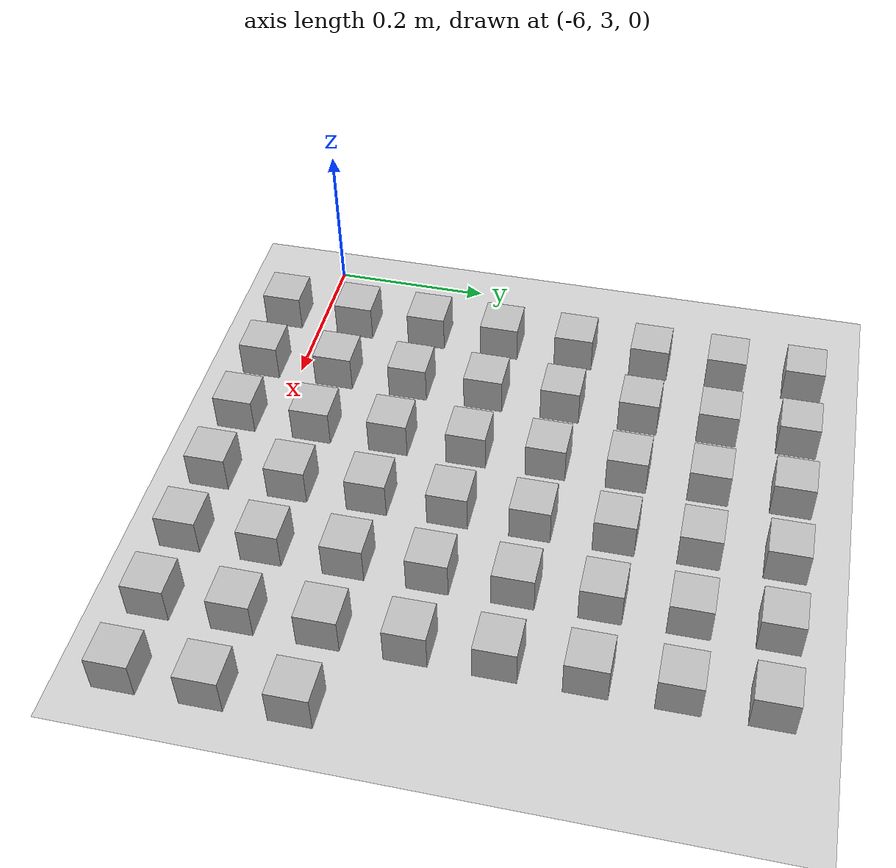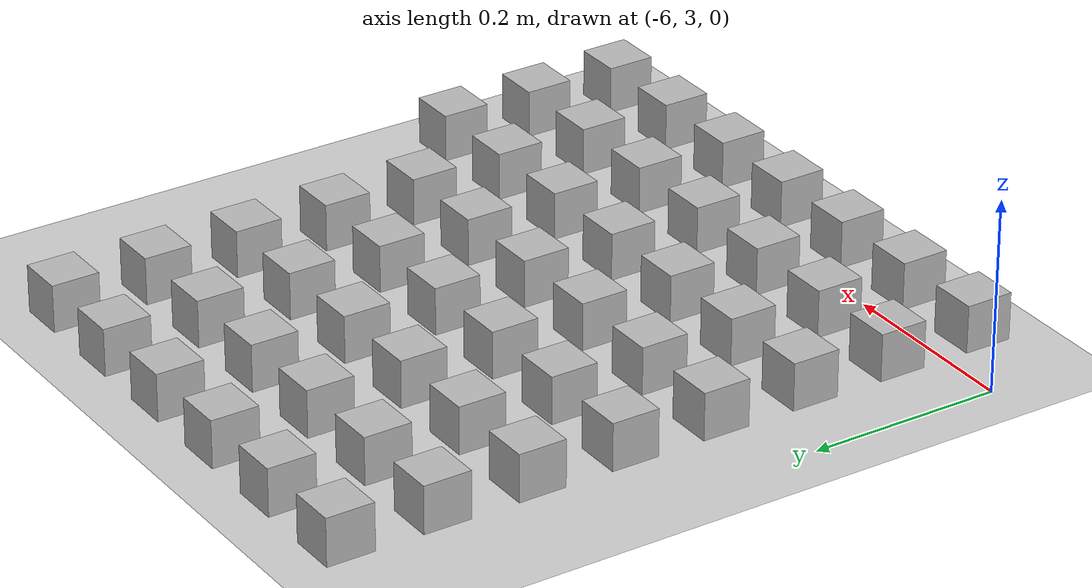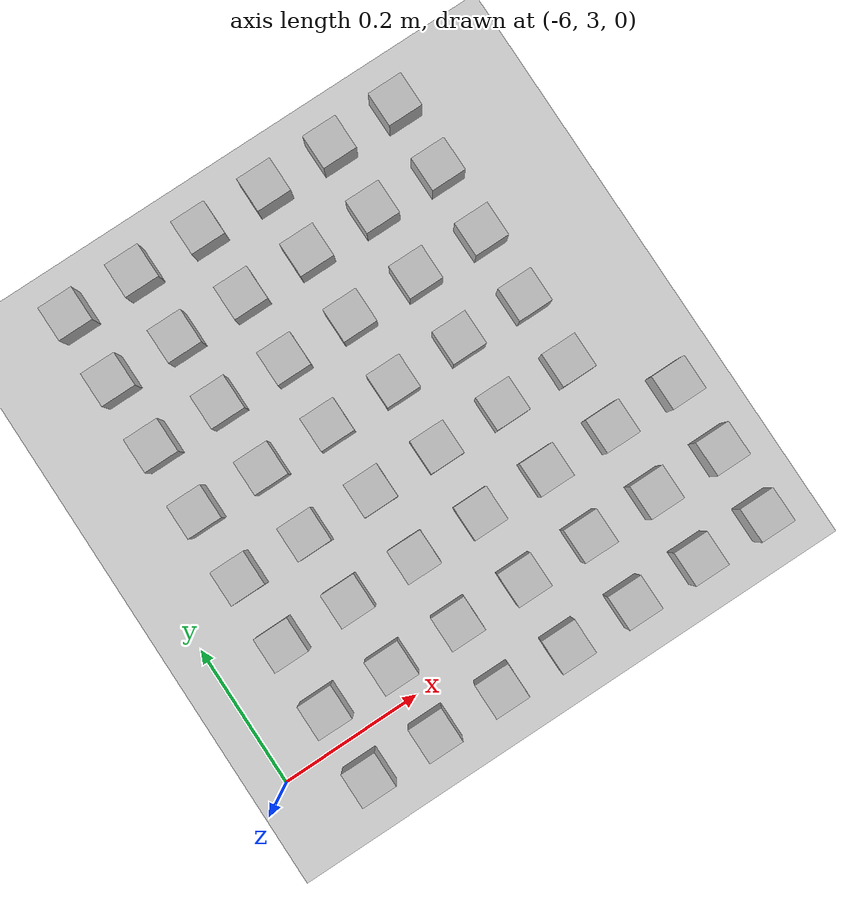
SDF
<sdf version="1.4">
 <world name="default">
  <model name="ground_plane">
   <static>1</static>
   <link name="link">
    <collision name="collision">
     <geometry><plane><normal>0 0 1</normal><size>100 100</size></plane></geometry>
     <surface><friction><ode><mu>100</mu><mu2>50</mu2></ode></friction></surface>
    </collision>
    <visual name="visual">
     <cast_shadows>0</cast_shadows>
     <geometry><plane><normal>0 0 1</normal><size>100 100</size></plane></geometry>
     <material>
      <script><uri>file://media/materials/scripts/gazebo.material</uri><name>Gazebo/Grey</name></script>
     </material>
    </visual>
    <velocity_decay><linear>0</linear><angular>0</angular></velocity_decay>
   </link>
  </model>
  <model name="at128">
   <static>0</static>
   <link name="link">
    <inertial>
     <mass>0.01</mass>
     <inertia><ixx>4e-05</ixx><ixy>0</ixy><ixz>0</ixz><iyy>4e-05</iyy><iyz>0</iyz><izz>4e-05</izz></inertia>
    </inertial>
    <visual name="visual">
     <transparency>0.1</transparency>
     <geometry><box><size>0.05 0.05 0.05</size></box></geometry>
     <material>
      <script>
       <uri>model://at0/materials/scripts</uri>
       <uri>model://at0/materials/textures</uri>
       <name>at0/Diffuse</name>
      </script>
     </material>
    </visual>
    <collision name="collision">
     <geometry><box><size>0.05 0.05 0.05</size></box></geometry>
     <surface><friction><ode><mu>0.8</mu><mu2>0.7</mu2></ode></friction></surface>
    </collision>
    <velocity_decay><linear>0</linear><angular>0</angular></velocity_decay>
   </link>
   <pose>-5.90443 2.95036 0.024997 2.9e-05 2.9e-05 2e-06</pose>
  </model>
  <model name="at129">
   <static>0</static>
   <link name="link">
    <inertial>
     <mass>0.01</mass>
     <inertia><ixx>4e-05</ixx><ixy>0</ixy><ixz>0</ixz><iyy>4e-05</iyy><iyz>0</iyz><izz>4e-05</izz></inertia>
    </inertial>
    <visual name="visual">
     <transparency>0.1</transparency>
     <geometry><box><size>0.05 0.05 0.05</size></box></geometry>
     <material>
      <script>
       <uri>model://at0/materials/scripts</uri>
       <uri>model://at0/materials/textures</uri>
       <name>at0/Diffuse</name>
      </script>
     </material>
    </visual>
    <collision name="collision">
     <geometry><box><size>0.05 0.05 0.05</size></box></geometry>
     <surface><friction><ode><mu>0.8</mu><mu2>0.7</mu2></ode></friction></surface>
    </collision>
    <velocity_decay><linear>0</linear><angular>0</angular></velocity_decay>
   </link>
   <pose>-5.80443 2.95036 0.024997 2.9e-05 2.9e-05 2e-06</pose>
  </model>
  <model name="at130">
   <static>0</static>
   <link name="link">
    <inertial>
     <mass>0.01</mass>
     <inertia><ixx>4e-05</ixx><ixy>0</ixy><ixz>0</ixz><iyy>4e-05</iyy><iyz>0</iyz><izz>4e-05</izz></inertia>
    </inertial>
    <visual name="visual">
     <transparency>0.1</transparency>
     <geometry><box><size>0.05 0.05 0.05</size></box></geometry>
     <material>
      <script>
       <uri>model://at0/materials/scripts</uri>
       <uri>model://at0/materials/textures</uri>
       <name>at0/Diffuse</name>
      </script>
     </material>
    </visual>
    <collision name="collision">
     <geometry><box><size>0.05 0.05 0.05</size></box></geometry>
     <surface><friction><ode><mu>0.8</mu><mu2>0.7</mu2></ode></friction></surface>
    </collision>
    <velocity_decay><linear>0</linear><angular>0</angular></velocity_decay>
   </link>
   <pose>-5.70443 2.95036 0.024997 2.9e-05 2.9e-05 2e-06</pose>
  </model>
  <model name="at131">
   <static>0</static>
   <link name="link">
    <inertial>
     <mass>0.01</mass>
     <inertia><ixx>4e-05</ixx><ixy>0</ixy><ixz>0</ixz><iyy>4e-05</iyy><iyz>0</iyz><izz>4e-05</izz></inertia>
    </inertial>
    <visual name="visual">
     <transparency>0.1</transparency>
     <geometry><box><size>0.05 0.05 0.05</size></box></geometry>
     <material>
      <script>
       <uri>model://at0/materials/scripts</uri>
       <uri>model://at0/materials/textures</uri>
       <name>at0/Diffuse</name>
      </script>
     </material>
    </visual>
    <collision name="collision">
     <geometry><box><size>0.05 0.05 0.05</size></box></geometry>
     <surface><friction><ode><mu>0.8</mu><mu2>0.7</mu2></ode></friction></surface>
    </collision>
    <velocity_decay><linear>0</linear><angular>0</angular></velocity_decay>
   </link>
   <pose>-5.60443 2.95036 0.024997 2.9e-05 2.9e-05 2e-06</pose>
  </model>
  <model name="at132">
   <static>0</static>
   <link name="link">
    <inertial>
     <mass>0.01</mass>
     <inertia><ixx>4e-05</ixx><ixy>0</ixy><ixz>0</ixz><iyy>4e-05</iyy><iyz>0</iyz><izz>4e-05</izz></inertia>
    </inertial>
    <visual name="visual">
     <transparency>0.1</transparency>
     <geometry><box><size>0.05 0.05 0.05</size></box></geometry>
     <material>
      <script>
       <uri>model://at0/materials/scripts</uri>
       <uri>model://at0/materials/textures</uri>
       <name>at0/Diffuse</name>
      </script>
     </material>
    </visual>
    <collision name="collision">
     <geometry><box><size>0.05 0.05 0.05</size></box></geometry>
     <surface><friction><ode><mu>0.8</mu><mu2>0.7</mu2></ode></friction></surface>
    </collision>
    <velocity_decay><linear>0</linear><angular>0</angular></velocity_decay>
   </link>
   <pose>-5.50443 2.95036 0.024997 2.9e-05 2.9e-05 2e-06</pose>
  </model>
  <model name="at133">
   <static>0</static>
   <link name="link">
    <inertial>
     <mass>0.01</mass>
     <inertia><ixx>4e-05</ixx><ixy>0</ixy><ixz>0</ixz><iyy>4e-05</iyy><iyz>0</iyz><izz>4e-05</izz></inertia>
    </inertial>
    <visual name="visual">
     <transparency>0.1</transparency>
     <geometry><box><size>0.05 0.05 0.05</size></box></geometry>
     <material>
      <script>
       <uri>model://at0/materials/scripts</uri>
       <uri>model://at0/materials/textures</uri>
       <name>at0/Diffuse</name>
      </script>
     </material>
    </visual>
    <collision name="collision">
     <geometry><box><size>0.05 0.05 0.05</size></box></geometry>
     <surface><friction><ode><mu>0.8</mu><mu2>0.7</mu2></ode></friction></surface>
    </collision>
    <velocity_decay><linear>0</linear><angular>0</angular></velocity_decay>
   </link>
   <pose>-5.40443 2.95036 0.024993 -2.9e-05 -2.9e-05 2e-06</pose>
  </model>
  <model name="at134">
   <static>0</static>
   <link name="link">
    <inertial>
     <mass>0.01</mass>
     <inertia><ixx>4e-05</ixx><ixy>0</ixy><ixz>0</ixz><iyy>4e-05</iyy><iyz>0</iyz><izz>4e-05</izz></inertia>
    </inertial>
    <visual name="visual">
     <transparency>0.1</transparency>
     <geometry><box><size>0.05 0.05 0.05</size></box></geometry>
     <material>
      <script>
       <uri>model://at0/materials/scripts</uri>
       <uri>model://at0/materials/textures</uri>
       <name>at0/Diffuse</name>
      </script>
     </material>
    </visual>
    <collision name="collision">
     <geometry><box><size>0.05 0.05 0.05</size></box></geometry>
     <surface><friction><ode><mu>0.8</mu><mu2>0.7</mu2></ode></friction></surface>
    </collision>
    <velocity_decay><linear>0</linear><angular>0</angular></velocity_decay>
   </link>
   <pose>-5.30443 2.95036 0.024993 -2.9e-05 -2.9e-05 2e-06</pose>
  </model>
  <model name="at136">
   <static>0</static>
   <link name="link">
    <inertial>
     <mass>0.01</mass>
     <inertia><ixx>4e-05</ixx><ixy>0</ixy><ixz>0</ixz><iyy>4e-05</iyy><iyz>0</iyz><izz>4e-05</izz></inertia>
    </inertial>
    <visual name="visual">
     <transparency>0.1</transparency>
     <geometry><box><size>0.05 0.05 0.05</size></box></geometry>
     <material>
      <script>
       <uri>model://at0/materials/scripts</uri>
       <uri>model://at0/materials/textures</uri>
       <name>at0/Diffuse</name>
      </script>
     </material>
    </visual>
    <collision name="collision">
     <geometry><box><size>0.05 0.05 0.05</size></box></geometry>
     <surface><friction><ode><mu>0.8</mu><mu2>0.7</mu2></ode></friction></surface>
    </collision>
    <velocity_decay><linear>0</linear><angular>0</angular></velocity_decay>
   </link>
   <pose>-5.90443 3.05036 0.024993 -2.9e-05 -2.9e-05 2e-06</pose>
  </model>
  <model name="at137">
   <static>0</static>
   <link name="link">
    <inertial>
     <mass>0.01</mass>
     <inertia><ixx>4e-05</ixx><ixy>0</ixy><ixz>0</ixz><iyy>4e-05</iyy><iyz>0</iyz><izz>4e-05</izz></inertia>
    </inertial>
    <visual name="visual">
     <transparency>0.1</transparency>
     <geometry><box><size>0.05 0.05 0.05</size></box></geometry>
     <material>
      <script>
       <uri>model://at0/materials/scripts</uri>
       <uri>model://at0/materials/textures</uri>
       <name>at0/Diffuse</name>
      </script>
     </material>
    </visual>
    <collision name="collision">
     <geometry><box><size>0.05 0.05 0.05</size></box></geometry>
     <surface><friction><ode><mu>0.8</mu><mu2>0.7</mu2></ode></friction></surface>
    </collision>
    <velocity_decay><linear>0</linear><angular>0</angular></velocity_decay>
   </link>
   <pose>-5.80443 3.05036 0.024993 -2.9e-05 -2.9e-05 2e-06</pose>
  </model>
  <model name="at138">
   <static>0</static>
   <link name="link">
    <inertial>
     <mass>0.01</mass>
     <inertia><ixx>4e-05</ixx><ixy>0</ixy><ixz>0</ixz><iyy>4e-05</iyy><iyz>0</iyz><izz>4e-05</izz></inertia>
    </inertial>
    <visual name="visual">
     <transparency>0.1</transparency>
     <geometry><box><size>0.05 0.05 0.05</size></box></geometry>
     <material>
      <script>
       <uri>model://at0/materials/scripts</uri>
       <uri>model://at0/materials/textures</uri>
       <name>at0/Diffuse</name>
      </script>
     </material>
    </visual>
    <collision name="collision">
     <geometry><box><size>0.05 0.05 0.05</size></box></geometry>
     <surface><friction><ode><mu>0.8</mu><mu2>0.7</mu2></ode></friction></surface>
    </collision>
    <velocity_decay><linear>0</linear><angular>0</angular></velocity_decay>
   </link>
   <pose>-5.70443 3.05036 0.024993 -2.9e-05 -2.9e-05 2e-06</pose>
  </model>
  <model name="at139">
   <static>0</static>
   <link name="link">
    <inertial>
     <mass>0.01</mass>
     <inertia><ixx>4e-05</ixx><ixy>0</ixy><ixz>0</ixz><iyy>4e-05</iyy><iyz>0</iyz><izz>4e-05</izz></inertia>
    </inertial>
    <visual name="visual">
     <transparency>0.1</transparency>
     <geometry><box><size>0.05 0.05 0.05</size></box></geometry>
     <material>
      <script>
       <uri>model://at0/materials/scripts</uri>
       <uri>model://at0/materials/textures</uri>
       <name>at0/Diffuse</name>
      </script>
     </material>
    </visual>
    <collision name="collision">
     <geometry><box><size>0.05 0.05 0.05</size></box></geometry>
     <surface><friction><ode><mu>0.8</mu><mu2>0.7</mu2></ode></friction></surface>
    </collision>
    <velocity_decay><linear>0</linear><angular>0</angular></velocity_decay>
   </link>
   <pose>-5.60443 3.05036 0.024993 -2.9e-05 -2.9e-05 2e-06</pose>
  </model>
  <model name="at140">
   <static>0</static>
   <link name="link">
    <inertial>
     <mass>0.01</mass>
     <inertia><ixx>4e-05</ixx><ixy>0</ixy><ixz>0</ixz><iyy>4e-05</iyy><iyz>0</iyz><izz>4e-05</izz></inertia>
    </inertial>
    <visual name="visual">
     <transparency>0.1</transparency>
     <geometry><box><size>0.05 0.05 0.05</size></box></geometry>
     <material>
      <script>
       <uri>model://at0/materials/scripts</uri>
       <uri>model://at0/materials/textures</uri>
       <name>at0/Diffuse</name>
      </script>
     </material>
    </visual>
    <collision name="collision">
     <geometry><box><size>0.05 0.05 0.05</size></box></geometry>
     <surface><friction><ode><mu>0.8</mu><mu2>0.7</mu2></ode></friction></surface>
    </collision>
    <velocity_decay><linear>0</linear><angular>0</angular></velocity_decay>
   </link>
   <pose>-5.50443 3.05036 0.024997 2.9e-05 2.9e-05 2e-06</pose>
  </model>
  <model name="at141">
   <static>0</static>
   <link name="link">
    <inertial>
     <mass>0.01</mass>
     <inertia><ixx>4e-05</ixx><ixy>0</ixy><ixz>0</ixz><iyy>4e-05</iyy><iyz>0</iyz><izz>4e-05</izz></inertia>
    </inertial>
    <visual name="visual">
     <transparency>0.1</transparency>
     <geometry><box><size>0.05 0.05 0.05</size></box></geometry>
     <material>
      <script>
       <uri>model://at0/materials/scripts</uri>
       <uri>model://at0/materials/textures</uri>
       <name>at0/Diffuse</name>
      </script>
     </material>
    </visual>
    <collision name="collision">
     <geometry><box><size>0.05 0.05 0.05</size></box></geometry>
     <surface><friction><ode><mu>0.8</mu><mu2>0.7</mu2></ode></friction></surface>
    </collision>
    <velocity_decay><linear>0</linear><angular>0</angular></velocity_decay>
   </link>
   <pose>-5.40443 3.05036 0.024997 2.9e-05 2.9e-05 2e-06</pose>
  </model>
  <model name="at142">
   <static>0</static>
   <link name="link">
    <inertial>
     <mass>0.01</mass>
     <inertia><ixx>4e-05</ixx><ixy>0</ixy><ixz>0</ixz><iyy>4e-05</iyy><iyz>0</iyz><izz>4e-05</izz></inertia>
    </inertial>
    <visual name="visual">
     <transparency>0.1</transparency>
     <geometry><box><size>0.05 0.05 0.05</size></box></geometry>
     <material>
      <script>
       <uri>model://at0/materials/scripts</uri>
       <uri>model://at0/materials/textures</uri>
       <name>at0/Diffuse</name>
      </script>
     </material>
    </visual>
    <collision name="collision">
     <geometry><box><size>0.05 0.05 0.05</size></box></geometry>
     <surface><friction><ode><mu>0.8</mu><mu2>0.7</mu2></ode></friction></surface>
    </collision>
    <velocity_decay><linear>0</linear><angular>0</angular></velocity_decay>
   </link>
   <pose>-5.30443 3.05036 0.024997 2.9e-05 2.9e-05 2e-06</pose>
  </model>
  <model name="at144">
   <static>0</static>
   <link name="link">
    <inertial>
     <mass>0.01</mass>
     <inertia><ixx>4e-05</ixx><ixy>0</ixy><ixz>0</ixz><iyy>4e-05</iyy><iyz>0</iyz><izz>4e-05</izz></inertia>
    </inertial>
    <visual name="visual">
     <transparency>0.1</transparency>
     <geometry><box><size>0.05 0.05 0.05</size></box></geometry>
     <material>
      <script>
       <uri>model://at0/materials/scripts</uri>
       <uri>model://at0/materials/textures</uri>
       <name>at0/Diffuse</name>
      </script>
     </material>
    </visual>
    <collision name="collision">
     <geometry><box><size>0.05 0.05 0.05</size></box></geometry>
     <surface><friction><ode><mu>0.8</mu><mu2>0.7</mu2></ode></friction></surface>
    </collision>
    <velocity_decay><linear>0</linear><angular>0</angular></velocity_decay>
   </link>
   <pose>-5.90443 3.15036 0.024993 -2.9e-05 -2.9e-05 2e-06</pose>
  </model>
  <model name="at145">
   <static>0</static>
   <link name="link">
    <inertial>
     <mass>0.01</mass>
     <inertia><ixx>4e-05</ixx><ixy>0</ixy><ixz>0</ixz><iyy>4e-05</iyy><iyz>0</iyz><izz>4e-05</izz></inertia>
    </inertial>
    <visual name="visual">
     <transparency>0.1</transparency>
     <geometry><box><size>0.05 0.05 0.05</size></box></geometry>
     <material>
      <script>
       <uri>model://at0/materials/scripts</uri>
       <uri>model://at0/materials/textures</uri>
       <name>at0/Diffuse</name>
      </script>
     </material>
    </visual>
    <collision name="collision">
     <geometry><box><size>0.05 0.05 0.05</size></box></geometry>
     <surface><friction><ode><mu>0.8</mu><mu2>0.7</mu2></ode></friction></surface>
    </collision>
    <velocity_decay><linear>0</linear><angular>0</angular></velocity_decay>
   </link>
   <pose>-5.80443 3.15036 0.024997 2.9e-05 2.9e-05 2e-06</pose>
  </model>
  <model name="at146">
   <static>0</static>
   <link name="link">
    <inertial>
     <mass>0.01</mass>
     <inertia><ixx>4e-05</ixx><ixy>0</ixy><ixz>0</ixz><iyy>4e-05</iyy><iyz>0</iyz><izz>4e-05</izz></inertia>
    </inertial>
    <visual name="visual">
     <transparency>0.1</transparency>
     <geometry><box><size>0.05 0.05 0.05</size></box></geometry>
     <material>
      <script>
       <uri>model://at0/materials/scripts</uri>
       <uri>model://at0/materials/textures</uri>
       <name>at0/Diffuse</name>
      </script>
     </material>
    </visual>
    <collision name="collision">
     <geometry><box><size>0.05 0.05 0.05</size></box></geometry>
     <surface><friction><ode><mu>0.8</mu><mu2>0.7</mu2></ode></friction></surface>
    </collision>
    <velocity_decay><linear>0</linear><angular>0</angular></velocity_decay>
   </link>
   <pose>-5.70443 3.15036 0.024993 -2.9e-05 -2.9e-05 2e-06</pose>
  </model>
  <model name="at147">
   <static>0</static>
   <link name="link">
    <inertial>
     <mass>0.01</mass>
     <inertia><ixx>4e-05</ixx><ixy>0</ixy><ixz>0</ixz><iyy>4e-05</iyy><iyz>0</iyz><izz>4e-05</izz></inertia>
    </inertial>
    <visual name="visual">
     <transparency>0.1</transparency>
     <geometry><box><size>0.05 0.05 0.05</size></box></geometry>
     <material>
      <script>
       <uri>model://at0/materials/scripts</uri>
       <uri>model://at0/materials/textures</uri>
       <name>at0/Diffuse</name>
      </script>
     </material>
    </visual>
    <collision name="collision">
     <geometry><box><size>0.05 0.05 0.05</size></box></geometry>
     <surface><friction><ode><mu>0.8</mu><mu2>0.7</mu2></ode></friction></surface>
    </collision>
    <velocity_decay><linear>0</linear><angular>0</angular></velocity_decay>
   </link>
   <pose>-5.60443 3.15036 0.024997 2.9e-05 2.9e-05 2e-06</pose>
  </model>
  <model name="at148">
   <static>0</static>
   <link name="link">
    <inertial>
     <mass>0.01</mass>
     <inertia><ixx>4e-05</ixx><ixy>0</ixy><ixz>0</ixz><iyy>4e-05</iyy><iyz>0</iyz><izz>4e-05</izz></inertia>
    </inertial>
    <visual name="visual">
     <transparency>0.1</transparency>
     <geometry><box><size>0.05 0.05 0.05</size></box></geometry>
     <material>
      <script>
       <uri>model://at0/materials/scripts</uri>
       <uri>model://at0/materials/textures</uri>
       <name>at0/Diffuse</name>
      </script>
     </material>
    </visual>
    <collision name="collision">
     <geometry><box><size>0.05 0.05 0.05</size></box></geometry>
     <surface><friction><ode><mu>0.8</mu><mu2>0.7</mu2></ode></friction></surface>
    </collision>
    <velocity_decay><linear>0</linear><angular>0</angular></velocity_decay>
   </link>
   <pose>-5.50443 3.15036 0.024993 -2.9e-05 -2.9e-05 2e-06</pose>
  </model>
  <model name="at149">
   <static>0</static>
   <link name="link">
    <inertial>
     <mass>0.01</mass>
     <inertia><ixx>4e-05</ixx><ixy>0</ixy><ixz>0</ixz><iyy>4e-05</iyy><iyz>0</iyz><izz>4e-05</izz></inertia>
    </inertial>
    <visual name="visual">
     <transparency>0.1</transparency>
     <geometry><box><size>0.05 0.05 0.05</size></box></geometry>
     <material>
      <script>
       <uri>model://at0/materials/scripts</uri>
       <uri>model://at0/materials/textures</uri>
       <name>at0/Diffuse</name>
      </script>
     </material>
    </visual>
    <collision name="collision">
     <geometry><box><size>0.05 0.05 0.05</size></box></geometry>
     <surface><friction><ode><mu>0.8</mu><mu2>0.7</mu2></ode></friction></surface>
    </collision>
    <velocity_decay><linear>0</linear><angular>0</angular></velocity_decay>
   </link>
   <pose>-5.40443 3.15036 0.024997 2.9e-05 2.9e-05 2e-06</pose>
  </model>
  <model name="at150">
   <static>0</static>
   <link name="link">
    <inertial>
     <mass>0.01</mass>
     <inertia><ixx>4e-05</ixx><ixy>0</ixy><ixz>0</ixz><iyy>4e-05</iyy><iyz>0</iyz><izz>4e-05</izz></inertia>
    </inertial>
    <visual name="visual">
     <transparency>0.1</transparency>
     <geometry><box><size>0.05 0.05 0.05</size></box></geometry>
     <material>
      <script>
       <uri>model://at0/materials/scripts</uri>
       <uri>model://at0/materials/textures</uri>
       <name>at0/Diffuse</name>
      </script>
     </material>
    </visual>
    <collision name="collision">
     <geometry><box><size>0.05 0.05 0.05</size></box></geometry>
     <surface><friction><ode><mu>0.8</mu><mu2>0.7</mu2></ode></friction></surface>
    </collision>
    <velocity_decay><linear>0</linear><angular>0</angular></velocity_decay>
   </link>
   <pose>-5.30443 3.15036 0.024997 2.9e-05 2.9e-05 2e-06</pose>
  </model>
  <model name="at152">
   <static>0</static>
   <link name="link">
    <inertial>
     <mass>0.01</mass>
     <inertia><ixx>4e-05</ixx><ixy>0</ixy><ixz>0</ixz><iyy>4e-05</iyy><iyz>0</iyz><izz>4e-05</izz></inertia>
    </inertial>
    <visual name="visual">
     <transparency>0.1</transparency>
     <geometry><box><size>0.05 0.05 0.05</size></box></geometry>
     <material>
      <script>
       <uri>model://at0/materials/scripts</uri>
       <uri>model://at0/materials/textures</uri>
       <name>at0/Diffuse</name>
      </script>
     </material>
    </visual>
    <collision name="collision">
     <geometry><box><size>0.05 0.05 0.05</size></box></geometry>
     <surface><friction><ode><mu>0.8</mu><mu2>0.7</mu2></ode></friction></surface>
    </collision>
    <velocity_decay><linear>0</linear><angular>0</angular></velocity_decay>
   </link>
   <pose>-5.90443 3.25036 0.024997 2.9e-05 2.9e-05 2e-06</pose>
  </model>
  <model name="at153">
   <static>0</static>
   <link name="link">
    <inertial>
     <mass>0.01</mass>
     <inertia><ixx>4e-05</ixx><ixy>0</ixy><ixz>0</ixz><iyy>4e-05</iyy><iyz>0</iyz><izz>4e-05</izz></inertia>
    </inertial>
    <visual name="visual">
     <transparency>0.1</transparency>
     <geometry><box><size>0.05 0.05 0.05</size></box></geometry>
     <material>
      <script>
       <uri>model://at0/materials/scripts</uri>
       <uri>model://at0/materials/textures</uri>
       <name>at0/Diffuse</name>
      </script>
     </material>
    </visual>
    <collision name="collision">
     <geometry><box><size>0.05 0.05 0.05</size></box></geometry>
     <surface><friction><ode><mu>0.8</mu><mu2>0.7</mu2></ode></friction></surface>
    </collision>
    <velocity_decay><linear>0</linear><angular>0</angular></velocity_decay>
   </link>
   <pose>-5.80443 3.25036 0.024993 -2.9e-05 -2.9e-05 2e-06</pose>
  </model>
  <model name="at154">
   <static>0</static>
   <link name="link">
    <inertial>
     <mass>0.01</mass>
     <inertia><ixx>4e-05</ixx><ixy>0</ixy><ixz>0</ixz><iyy>4e-05</iyy><iyz>0</iyz><izz>4e-05</izz></inertia>
    </inertial>
    <visual name="visual">
     <transparency>0.1</transparency>
     <geometry><box><size>0.05 0.05 0.05</size></box></geometry>
     <material>
      <script>
       <uri>model://at0/materials/scripts</uri>
       <uri>model://at0/materials/textures</uri>
       <name>at0/Diffuse</name>
      </script>
     </material>
    </visual>
    <collision name="collision">
     <geometry><box><size>0.05 0.05 0.05</size></box></geometry>
     <surface><friction><ode><mu>0.8</mu><mu2>0.7</mu2></ode></friction></surface>
    </collision>
    <velocity_decay><linear>0</linear><angular>0</angular></velocity_decay>
   </link>
   <pose>-5.70443 3.25036 0.024993 -2.9e-05 -2.9e-05 2e-06</pose>
  </model>
  <model name="at155">
   <static>0</static>
   <link name="link">
    <inertial>
     <mass>0.01</mass>
     <inertia><ixx>4e-05</ixx><ixy>0</ixy><ixz>0</ixz><iyy>4e-05</iyy><iyz>0</iyz><izz>4e-05</izz></inertia>
    </inertial>
    <visual name="visual">
     <transparency>0.1</transparency>
     <geometry><box><size>0.05 0.05 0.05</size></box></geometry>
     <material>
      <script>
       <uri>model://at0/materials/scripts</uri>
       <uri>model://at0/materials/textures</uri>
       <name>at0/Diffuse</name>
      </script>
     </material>
    </visual>
    <collision name="collision">
     <geometry><box><size>0.05 0.05 0.05</size></box></geometry>
     <surface><friction><ode><mu>0.8</mu><mu2>0.7</mu2></ode></friction></surface>
    </collision>
    <velocity_decay><linear>0</linear><angular>0</angular></velocity_decay>
   </link>
   <pose>-5.60443 3.25036 0.024997 2.9e-05 2.9e-05 2e-06</pose>
  </model>
  <model name="at156">
   <static>0</static>
   <link name="link">
    <inertial>
     <mass>0.01</mass>
     <inertia><ixx>4e-05</ixx><ixy>0</ixy><ixz>0</ixz><iyy>4e-05</iyy><iyz>0</iyz><izz>4e-05</izz></inertia>
    </inertial>
    <visual name="visual">
     <transparency>0.1</transparency>
     <geometry><box><size>0.05 0.05 0.05</size></box></geometry>
     <material>
      <script>
       <uri>model://at0/materials/scripts</uri>
       <uri>model://at0/materials/textures</uri>
       <name>at0/Diffuse</name>
      </script>
     </material>
    </visual>
    <collision name="collision">
     <geometry><box><size>0.05 0.05 0.05</size></box></geometry>
     <surface><friction><ode><mu>0.8</mu><mu2>0.7</mu2></ode></friction></surface>
    </collision>
    <velocity_decay><linear>0</linear><angular>0</angular></velocity_decay>
   </link>
   <pose>-5.50443 3.25036 0.024993 -2.9e-05 -2.9e-05 2e-06</pose>
  </model>
  <model name="at157">
   <static>0</static>
   <link name="link">
    <inertial>
     <mass>0.01</mass>
     <inertia><ixx>4e-05</ixx><ixy>0</ixy><ixz>0</ixz><iyy>4e-05</iyy><iyz>0</iyz><izz>4e-05</izz></inertia>
    </inertial>
    <visual name="visual">
     <transparency>0.1</transparency>
     <geometry><box><size>0.05 0.05 0.05</size></box></geometry>
     <material>
      <script>
       <uri>model://at0/materials/scripts</uri>
       <uri>model://at0/materials/textures</uri>
       <name>at0/Diffuse</name>
      </script>
     </material>
    </visual>
    <collision name="collision">
     <geometry><box><size>0.05 0.05 0.05</size></box></geometry>
     <surface><friction><ode><mu>0.8</mu><mu2>0.7</mu2></ode></friction></surface>
    </collision>
    <velocity_decay><linear>0</linear><angular>0</angular></velocity_decay>
   </link>
   <pose>-5.40443 3.25036 0.024993 -2.9e-05 -2.9e-05 2e-06</pose>
  </model>
  <model name="at160">
   <static>0</static>
   <link name="link">
    <inertial>
     <mass>0.01</mass>
     <inertia><ixx>4e-05</ixx><ixy>0</ixy><ixz>0</ixz><iyy>4e-05</iyy><iyz>0</iyz><izz>4e-05</izz></inertia>
    </inertial>
    <visual name="visual">
     <transparency>0.1</transparency>
     <geometry><box><size>0.05 0.05 0.05</size></box></geometry>
     <material>
      <script>
       <uri>model://at0/materials/scripts</uri>
       <uri>model://at0/materials/textures</uri>
       <name>at0/Diffuse</name>
      </script>
     </material>
    </visual>
    <collision name="collision">
     <geometry><box><size>0.05 0.05 0.05</size></box></geometry>
     <surface><friction><ode><mu>0.8</mu><mu2>0.7</mu2></ode></friction></surface>
    </collision>
    <velocity_decay><linear>0</linear><angular>0</angular></velocity_decay>
   </link>
   <pose>-5.90443 3.35036 0.024997 2.9e-05 2.9e-05 2e-06</pose>
  </model>
  <model name="at161">
   <static>0</static>
   <link name="link">
    <inertial>
     <mass>0.01</mass>
     <inertia><ixx>4e-05</ixx><ixy>0</ixy><ixz>0</ixz><iyy>4e-05</iyy><iyz>0</iyz><izz>4e-05</izz></inertia>
    </inertial>
    <visual name="visual">
     <transparency>0.1</transparency>
     <geometry><box><size>0.05 0.05 0.05</size></box></geometry>
     <material>
      <script>
       <uri>model://at0/materials/scripts</uri>
       <uri>model://at0/materials/textures</uri>
       <name>at0/Diffuse</name>
      </script>
     </material>
    </visual>
    <collision name="collision">
     <geometry><box><size>0.05 0.05 0.05</size></box></geometry>
     <surface><friction><ode><mu>0.8</mu><mu2>0.7</mu2></ode></friction></surface>
    </collision>
    <velocity_decay><linear>0</linear><angular>0</angular></velocity_decay>
   </link>
   <pose>-5.80443 3.35036 0.024997 2.9e-05 2.9e-05 2e-06</pose>
  </model>
  <model name="at162">
   <static>0</static>
   <link name="link">
    <inertial>
     <mass>0.01</mass>
     <inertia><ixx>4e-05</ixx><ixy>0</ixy><ixz>0</ixz><iyy>4e-05</iyy><iyz>0</iyz><izz>4e-05</izz></inertia>
    </inertial>
    <visual name="visual">
     <transparency>0.1</transparency>
     <geometry><box><size>0.05 0.05 0.05</size></box></geometry>
     <material>
      <script>
       <uri>model://at0/materials/scripts</uri>
       <uri>model://at0/materials/textures</uri>
       <name>at0/Diffuse</name>
      </script>
     </material>
    </visual>
    <collision name="collision">
     <geometry><box><size>0.05 0.05 0.05</size></box></geometry>
     <surface><friction><ode><mu>0.8</mu><mu2>0.7</mu2></ode></friction></surface>
    </collision>
    <velocity_decay><linear>0</linear><angular>0</angular></velocity_decay>
   </link>
   <pose>-5.70443 3.35036 0.024993 -2.9e-05 -2.9e-05 1e-06</pose>
  </model>
  <model name="at163">
   <static>0</static>
   <link name="link">
    <inertial>
     <mass>0.01</mass>
     <inertia><ixx>4e-05</ixx><ixy>0</ixy><ixz>0</ixz><iyy>4e-05</iyy><iyz>0</iyz><izz>4e-05</izz></inertia>
    </inertial>
    <visual name="visual">
     <transparency>0.1</transparency>
     <geometry><box><size>0.05 0.05 0.05</size></box></geometry>
     <material>
      <script>
       <uri>model://at0/materials/scripts</uri>
       <uri>model://at0/materials/textures</uri>
       <name>at0/Diffuse</name>
      </script>
     </material>
    </visual>
    <collision name="collision">
     <geometry><box><size>0.05 0.05 0.05</size></box></geometry>
     <surface><friction><ode><mu>0.8</mu><mu2>0.7</mu2></ode></friction></surface>
    </collision>
    <velocity_decay><linear>0</linear><angular>0</angular></velocity_decay>
   </link>
   <pose>-5.60443 3.35036 0.024997 2.9e-05 2.9e-05 1e-06</pose>
  </model>
  <model name="at164">
   <static>0</static>
   <link name="link">
    <inertial>
     <mass>0.01</mass>
     <inertia><ixx>4e-05</ixx><ixy>0</ixy><ixz>0</ixz><iyy>4e-05</iyy><iyz>0</iyz><izz>4e-05</izz></inertia>
    </inertial>
    <visual name="visual">
     <transparency>0.1</transparency>
     <geometry><box><size>0.05 0.05 0.05</size></box></geometry>
     <material>
      <script>
       <uri>model://at0/materials/scripts</uri>
       <uri>model://at0/materials/textures</uri>
       <name>at0/Diffuse</name>
      </script>
     </material>
    </visual>
    <collision name="collision">
     <geometry><box><size>0.05 0.05 0.05</size></box></geometry>
     <surface><friction><ode><mu>0.8</mu><mu2>0.7</mu2></ode></friction></surface>
    </collision>
    <velocity_decay><linear>0</linear><angular>0</angular></velocity_decay>
   </link>
   <pose>-5.50443 3.35036 0.024997 2.9e-05 2.9e-05 1e-06</pose>
  </model>
  <model name="at165">
   <static>0</static>
   <link name="link">
    <inertial>
     <mass>0.01</mass>
     <inertia><ixx>4e-05</ixx><ixy>0</ixy><ixz>0</ixz><iyy>4e-05</iyy><iyz>0</iyz><izz>4e-05</izz></inertia>
    </inertial>
    <visual name="visual">
     <transparency>0.1</transparency>
     <geometry><box><size>0.05 0.05 0.05</size></box></geometry>
     <material>
      <script>
       <uri>model://at0/materials/scripts</uri>
       <uri>model://at0/materials/textures</uri>
       <name>at0/Diffuse</name>
      </script>
     </material>
    </visual>
    <collision name="collision">
     <geometry><box><size>0.05 0.05 0.05</size></box></geometry>
     <surface><friction><ode><mu>0.8</mu><mu2>0.7</mu2></ode></friction></surface>
    </collision>
    <velocity_decay><linear>0</linear><angular>0</angular></velocity_decay>
   </link>
   <pose>-5.40443 3.35036 0.024997 2.9e-05 2.9e-05 1e-06</pose>
  </model>
  <model name="at168">
   <static>0</static>
   <link name="link">
    <inertial>
     <mass>0.01</mass>
     <inertia><ixx>4e-05</ixx><ixy>0</ixy><ixz>0</ixz><iyy>4e-05</iyy><iyz>0</iyz><izz>4e-05</izz></inertia>
    </inertial>
    <visual name="visual">
     <transparency>0.1</transparency>
     <geometry><box><size>0.05 0.05 0.05</size></box></geometry>
     <material>
      <script>
       <uri>model://at0/materials/scripts</uri>
       <uri>model://at0/materials/textures</uri>
       <name>at0/Diffuse</name>
      </script>
     </material>
    </visual>
    <collision name="collision">
     <geometry><box><size>0.05 0.05 0.05</size></box></geometry>
     <surface><friction><ode><mu>0.8</mu><mu2>0.7</mu2></ode></friction></surface>
    </collision>
    <velocity_decay><linear>0</linear><angular>0</angular></velocity_decay>
   </link>
   <pose>-5.90443 3.45036 0.024993 -2.9e-05 -2.9e-05 1e-06</pose>
  </model>
  <model name="at169">
   <static>0</static>
   <link name="link">
    <inertial>
     <mass>0.01</mass>
     <inertia><ixx>4e-05</ixx><ixy>0</ixy><ixz>0</ixz><iyy>4e-05</iyy><iyz>0</iyz><izz>4e-05</izz></inertia>
    </inertial>
    <visual name="visual">
     <transparency>0.1</transparency>
     <geometry><box><size>0.05 0.05 0.05</size></box></geometry>
     <material>
      <script>
       <uri>model://at0/materials/scripts</uri>
       <uri>model://at0/materials/textures</uri>
       <name>at0/Diffuse</name>
      </script>
     </material>
    </visual>
    <collision name="collision">
     <geometry><box><size>0.05 0.05 0.05</size></box></geometry>
     <surface><friction><ode><mu>0.8</mu><mu2>0.7</mu2></ode></friction></surface>
    </collision>
    <velocity_decay><linear>0</linear><angular>0</angular></velocity_decay>
   </link>
   <pose>-5.80443 3.45036 0.024997 2.9e-05 2.9e-05 1e-06</pose>
  </model>
  <model name="at170">
   <static>0</static>
   <link name="link">
    <inertial>
     <mass>0.01</mass>
     <inertia><ixx>4e-05</ixx><ixy>0</ixy><ixz>0</ixz><iyy>4e-05</iyy><iyz>0</iyz><izz>4e-05</izz></inertia>
    </inertial>
    <visual name="visual">
     <transparency>0.1</transparency>
     <geometry><box><size>0.05 0.05 0.05</size></box></geometry>
     <material>
      <script>
       <uri>model://at0/materials/scripts</uri>
       <uri>model://at0/materials/textures</uri>
       <name>at0/Diffuse</name>
      </script>
     </material>
    </visual>
    <collision name="collision">
     <geometry><box><size>0.05 0.05 0.05</size></box></geometry>
     <surface><friction><ode><mu>0.8</mu><mu2>0.7</mu2></ode></friction></surface>
    </collision>
    <velocity_decay><linear>0</linear><angular>0</angular></velocity_decay>
   </link>
   <pose>-5.70443 3.45036 0.024997 2.9e-05 2.9e-05 1e-06</pose>
  </model>
  <model name="at171">
   <static>0</static>
   <link name="link">
    <inertial>
     <mass>0.01</mass>
     <inertia><ixx>4e-05</ixx><ixy>0</ixy><ixz>0</ixz><iyy>4e-05</iyy><iyz>0</iyz><izz>4e-05</izz></inertia>
    </inertial>
    <visual name="visual">
     <transparency>0.1</transparency>
     <geometry><box><size>0.05 0.05 0.05</size></box></geometry>
     <material>
      <script>
       <uri>model://at0/materials/scripts</uri>
       <uri>model://at0/materials/textures</uri>
       <name>at0/Diffuse</name>
      </script>
     </material>
    </visual>
    <collision name="collision">
     <geometry><box><size>0.05 0.05 0.05</size></box></geometry>
     <surface><friction><ode><mu>0.8</mu><mu2>0.7</mu2></ode></friction></surface>
    </collision>
    <velocity_decay><linear>0</linear><angular>0</angular></velocity_decay>
   </link>
   <pose>-5.60443 3.45036 0.024997 2.9e-05 2.9e-05 1e-06</pose>
  </model>
  <model name="at172">
   <static>0</static>
   <link name="link">
    <inertial>
     <mass>0.01</mass>
     <inertia><ixx>4e-05</ixx><ixy>0</ixy><ixz>0</ixz><iyy>4e-05</iyy><iyz>0</iyz><izz>4e-05</izz></inertia>
    </inertial>
    <visual name="visual">
     <transparency>0.1</transparency>
     <geometry><box><size>0.05 0.05 0.05</size></box></geometry>
     <material>
      <script>
       <uri>model://at0/materials/scripts</uri>
       <uri>model://at0/materials/textures</uri>
       <name>at0/Diffuse</name>
      </script>
     </material>
    </visual>
    <collision name="collision">
     <geometry><box><size>0.05 0.05 0.05</size></box></geometry>
     <surface><friction><ode><mu>0.8</mu><mu2>0.7</mu2></ode></friction></surface>
    </collision>
    <velocity_decay><linear>0</linear><angular>0</angular></velocity_decay>
   </link>
   <pose>-5.50443 3.45036 0.024997 2.9e-05 2.9e-05 1e-06</pose>
  </model>
  <model name="at173">
   <static>0</static>
   <link name="link">
    <inertial>
     <mass>0.01</mass>
     <inertia><ixx>4e-05</ixx><ixy>0</ixy><ixz>0</ixz><iyy>4e-05</iyy><iyz>0</iyz><izz>4e-05</izz></inertia>
    </inertial>
    <visual name="visual">
     <transparency>0.1</transparency>
     <geometry><box><size>0.05 0.05 0.05</size></box></geometry>
     <material>
      <script>
       <uri>model://at0/materials/scripts</uri>
       <uri>model://at0/materials/textures</uri>
       <name>at0/Diffuse</name>
      </script>
     </material>
    </visual>
    <collision name="collision">
     <geometry><box><size>0.05 0.05 0.05</size></box></geometry>
     <surface><friction><ode><mu>0.8</mu><mu2>0.7</mu2></ode></friction></surface>
    </collision>
    <velocity_decay><linear>0</linear><angular>0</angular></velocity_decay>
   </link>
   <pose>-5.40443 3.45036 0.024997 2.9e-05 2.9e-05 1e-06</pose>
  </model>
  <model name="at176">
   <static>0</static>
   <link name="link">
    <inertial>
     <mass>0.01</mass>
     <inertia><ixx>4e-05</ixx><ixy>0</ixy><ixz>0</ixz><iyy>4e-05</iyy><iyz>0</iyz><izz>4e-05</izz></inertia>
    </inertial>
    <visual name="visual">
     <transparency>0.1</transparency>
     <geometry><box><size>0.05 0.05 0.05</size></box></geometry>
     <material>
      <script>
       <uri>model://at0/materials/scripts</uri>
       <uri>model://at0/materials/textures</uri>
       <name>at0/Diffuse</name>
      </script>
     </material>
    </visual>
    <collision name="collision">
     <geometry><box><size>0.05 0.05 0.05</size></box></geometry>
     <surface><friction><ode><mu>0.8</mu><mu2>0.7</mu2></ode></friction></surface>
    </collision>
    <velocity_decay><linear>0</linear><angular>0</angular></velocity_decay>
   </link>
   <pose>-5.90443 3.55036 0.024997 2.9e-05 2.9e-05 1e-06</pose>
  </model>
  <model name="at177">
   <static>0</static>
   <link name="link">
    <inertial>
     <mass>0.01</mass>
     <inertia><ixx>4e-05</ixx><ixy>0</ixy><ixz>0</ixz><iyy>4e-05</iyy><iyz>0</iyz><izz>4e-05</izz></inertia>
    </inertial>
    <visual name="visual">
     <transparency>0.1</transparency>
     <geometry><box><size>0.05 0.05 0.05</size></box></geometry>
     <material>
      <script>
       <uri>model://at0/materials/scripts</uri>
       <uri>model://at0/materials/textures</uri>
       <name>at0/Diffuse</name>
      </script>
     </material>
    </visual>
    <collision name="collision">
     <geometry><box><size>0.05 0.05 0.05</size></box></geometry>
     <surface><friction><ode><mu>0.8</mu><mu2>0.7</mu2></ode></friction></surface>
    </collision>
    <velocity_decay><linear>0</linear><angular>0</angular></velocity_decay>
   </link>
   <pose>-5.80443 3.55036 0.024993 -2.9e-05 -2.9e-05 1e-06</pose>
  </model>
  <model name="at178">
   <static>0</static>
   <link name="link">
    <inertial>
     <mass>0.01</mass>
     <inertia><ixx>4e-05</ixx><ixy>0</ixy><ixz>0</ixz><iyy>4e-05</iyy><iyz>0</iyz><izz>4e-05</izz></inertia>
    </inertial>
    <visual name="visual">
     <transparency>0.1</transparency>
     <geometry><box><size>0.05 0.05 0.05</size></box></geometry>
     <material>
      <script>
       <uri>model://at0/materials/scripts</uri>
       <uri>model://at0/materials/textures</uri>
       <name>at0/Diffuse</name>
      </script>
     </material>
    </visual>
    <collision name="collision">
     <geometry><box><size>0.05 0.05 0.05</size></box></geometry>
     <surface><friction><ode><mu>0.8</mu><mu2>0.7</mu2></ode></friction></surface>
    </collision>
    <velocity_decay><linear>0</linear><angular>0</angular></velocity_decay>
   </link>
   <pose>-5.70443 3.55036 0.024993 -2.9e-05 -2.9e-05 1e-06</pose>
  </model>
  <model name="at179">
   <static>0</static>
   <link name="link">
    <inertial>
     <mass>0.01</mass>
     <inertia><ixx>4e-05</ixx><ixy>0</ixy><ixz>0</ixz><iyy>4e-05</iyy><iyz>0</iyz><izz>4e-05</izz></inertia>
    </inertial>
    <visual name="visual">
     <transparency>0.1</transparency>
     <geometry><box><size>0.05 0.05 0.05</size></box></geometry>
     <material>
      <script>
       <uri>model://at0/materials/scripts</uri>
       <uri>model://at0/materials/textures</uri>
       <name>at0/Diffuse</name>
      </script>
     </material>
    </visual>
    <collision name="collision">
     <geometry><box><size>0.05 0.05 0.05</size></box></geometry>
     <surface><friction><ode><mu>0.8</mu><mu2>0.7</mu2></ode></friction></surface>
    </collision>
    <velocity_decay><linear>0</linear><angular>0</angular></velocity_decay>
   </link>
   <pose>-5.60443 3.55036 0.024997 2.9e-05 2.9e-05 1e-06</pose>
  </model>
  <model name="at180">
   <static>0</static>
   <link name="link">
    <inertial>
     <mass>0.01</mass>
     <inertia><ixx>4e-05</ixx><ixy>0</ixy><ixz>0</ixz><iyy>4e-05</iyy><iyz>0</iyz><izz>4e-05</izz></inertia>
    </inertial>
    <visual name="visual">
     <transparency>0.1</transparency>
     <geometry><box><size>0.05 0.05 0.05</size></box></geometry>
     <material>
      <script>
       <uri>model://at0/materials/scripts</uri>
       <uri>model://at0/materials/textures</uri>
       <name>at0/Diffuse</name>
      </script>
     </material>
    </visual>
    <collision name="collision">
     <geometry><box><size>0.05 0.05 0.05</size></box></geometry>
     <surface><friction><ode><mu>0.8</mu><mu2>0.7</mu2></ode></friction></surface>
    </collision>
    <velocity_decay><linear>0</linear><angular>0</angular></velocity_decay>
   </link>
   <pose>-5.50443 3.55036 0.024993 -2.9e-05 -2.9e-05 1e-06</pose>
  </model>
  <model name="at181">
   <static>0</static>
   <link name="link">
    <inertial>
     <mass>0.01</mass>
     <inertia><ixx>4e-05</ixx><ixy>0</ixy><ixz>0</ixz><iyy>4e-05</iyy><iyz>0</iyz><izz>4e-05</izz></inertia>
    </inertial>
    <visual name="visual">
     <transparency>0.1</transparency>
     <geometry><box><size>0.05 0.05 0.05</size></box></geometry>
     <material>
      <script>
       <uri>model://at0/materials/scripts</uri>
       <uri>model://at0/materials/textures</uri>
       <name>at0/Diffuse</name>
      </script>
     </material>
    </visual>
    <collision name="collision">
     <geometry><box><size>0.05 0.05 0.05</size></box></geometry>
     <surface><friction><ode><mu>0.8</mu><mu2>0.7</mu2></ode></friction></surface>
    </collision>
    <velocity_decay><linear>0</linear><angular>0</angular></velocity_decay>
   </link>
   <pose>-5.40443 3.55036 0.024993 -2.9e-05 -2.9e-05 1e-06</pose>
  </model>
  <model name="at184">
   <static>0</static>
   <link name="link">
    <inertial>
     <mass>0.01</mass>
     <inertia><ixx>4e-05</ixx><ixy>0</ixy><ixz>0</ixz><iyy>4e-05</iyy><iyz>0</iyz><izz>4e-05</izz></inertia>
    </inertial>
    <visual name="visual">
     <transparency>0.1</transparency>
     <geometry><box><size>0.05 0.05 0.05</size></box></geometry>
     <material>
      <script>
       <uri>model://at0/materials/scripts</uri>
       <uri>model://at0/materials/textures</uri>
       <name>at0/Diffuse</name>
      </script>
     </material>
    </visual>
    <collision name="collision">
     <geometry><box><size>0.05 0.05 0.05</size></box></geometry>
     <surface><friction><ode><mu>0.8</mu><mu2>0.7</mu2></ode></friction></surface>
    </collision>
    <velocity_decay><linear>0</linear><angular>0</angular></velocity_decay>
   </link>
   <pose>-5.90443 3.65036 0.024993 -2.9e-05 -2.9e-05 1e-06</pose>
  </model>
  <model name="at185">
   <static>0</static>
   <link name="link">
    <inertial>
     <mass>0.01</mass>
     <inertia><ixx>4e-05</ixx><ixy>0</ixy><ixz>0</ixz><iyy>4e-05</iyy><iyz>0</iyz><izz>4e-05</izz></inertia>
    </inertial>
    <visual name="visual">
     <transparency>0.1</transparency>
     <geometry><box><size>0.05 0.05 0.05</size></box></geometry>
     <material>
      <script>
       <uri>model://at0/materials/scripts</uri>
       <uri>model://at0/materials/textures</uri>
       <name>at0/Diffuse</name>
      </script>
     </material>
    </visual>
    <collision name="collision">
     <geometry><box><size>0.05 0.05 0.05</size></box></geometry>
     <surface><friction><ode><mu>0.8</mu><mu2>0.7</mu2></ode></friction></surface>
    </collision>
    <velocity_decay><linear>0</linear><angular>0</angular></velocity_decay>
   </link>
   <pose>-5.80443 3.65036 0.024997 2.9e-05 2.9e-05 1e-06</pose>
  </model>
  <model name="at186">
   <static>0</static>
   <link name="link">
    <inertial>
     <mass>0.01</mass>
     <inertia><ixx>4e-05</ixx><ixy>0</ixy><ixz>0</ixz><iyy>4e-05</iyy><iyz>0</iyz><izz>4e-05</izz></inertia>
    </inertial>
    <visual name="visual">
     <transparency>0.1</transparency>
     <geometry><box><size>0.05 0.05 0.05</size></box></geometry>
     <material>
      <script>
       <uri>model://at0/materials/scripts</uri>
       <uri>model://at0/materials/textures</uri>
       <name>at0/Diffuse</name>
      </script>
     </material>
    </visual>
    <collision name="collision">
     <geometry><box><size>0.05 0.05 0.05</size></box></geometry>
     <surface><friction><ode><mu>0.8</mu><mu2>0.7</mu2></ode></friction></surface>
    </collision>
    <velocity_decay><linear>0</linear><angular>0</angular></velocity_decay>
   </link>
   <pose>-5.70443 3.65036 0.024993 -2.9e-05 -2.9e-05 1e-06</pose>
  </model>
  <model name="at187">
   <static>0</static>
   <link name="link">
    <inertial>
     <mass>0.01</mass>
     <inertia><ixx>4e-05</ixx><ixy>0</ixy><ixz>0</ixz><iyy>4e-05</iyy><iyz>0</iyz><izz>4e-05</izz></inertia>
    </inertial>
    <visual name="visual">
     <transparency>0.1</transparency>
     <geometry><box><size>0.05 0.05 0.05</size></box></geometry>
     <material>
      <script>
       <uri>model://at0/materials/scripts</uri>
       <uri>model://at0/materials/textures</uri>
       <name>at0/Diffuse</name>
      </script>
     </material>
    </visual>
    <collision name="collision">
     <geometry><box><size>0.05 0.05 0.05</size></box></geometry>
     <surface><friction><ode><mu>0.8</mu><mu2>0.7</mu2></ode></friction></surface>
    </collision>
    <velocity_decay><linear>0</linear><angular>0</angular></velocity_decay>
   </link>
   <pose>-5.60443 3.65036 0.024997 2.9e-05 2.9e-05 1e-06</pose>
  </model>
  <model name="at188">
   <static>0</static>
   <link name="link">
    <inertial>
     <mass>0.01</mass>
     <inertia><ixx>4e-05</ixx><ixy>0</ixy><ixz>0</ixz><iyy>4e-05</iyy><iyz>0</iyz><izz>4e-05</izz></inertia>
    </inertial>
    <visual name="visual">
     <transparency>0.1</transparency>
     <geometry><box><size>0.05 0.05 0.05</size></box></geometry>
     <material>
      <script>
       <uri>model://at0/materials/scripts</uri>
       <uri>model://at0/materials/textures</uri>
       <name>at0/Diffuse</name>
      </script>
     </material>
    </visual>
    <collision name="collision">
     <geometry><box><size>0.05 0.05 0.05</size></box></geometry>
     <surface><friction><ode><mu>0.8</mu><mu2>0.7</mu2></ode></friction></surface>
    </collision>
    <velocity_decay><linear>0</linear><angular>0</angular></velocity_decay>
   </link>
   <pose>-5.50443 3.65036 0.024997 2.9e-05 2.9e-05 1e-06</pose>
  </model>
  <model name="at189">
   <static>0</static>
   <link name="link">
    <inertial>
     <mass>0.01</mass>
     <inertia><ixx>4e-05</ixx><ixy>0</ixy><ixz>0</ixz><iyy>4e-05</iyy><iyz>0</iyz><izz>4e-05</izz></inertia>
    </inertial>
    <visual name="visual">
     <transparency>0.1</transparency>
     <geometry><box><size>0.05 0.05 0.05</size></box></geometry>
     <material>
      <script>
       <uri>model://at0/materials/scripts</uri>
       <uri>model://at0/materials/textures</uri>
       <name>at0/Diffuse</name>
      </script>
     </material>
    </visual>
    <collision name="collision">
     <geometry><box><size>0.05 0.05 0.05</size></box></geometry>
     <surface><friction><ode><mu>0.8</mu><mu2>0.7</mu2></ode></friction></surface>
    </collision>
    <velocity_decay><linear>0</linear><angular>0</angular></velocity_decay>
   </link>
   <pose>-5.40443 3.65036 0.024993 -2.9e-05 -2.9e-05 1e-06</pose>
  </model>
 </world>
</sdf>
